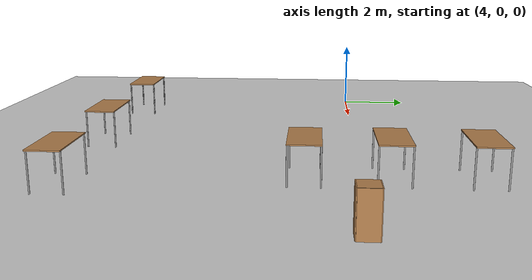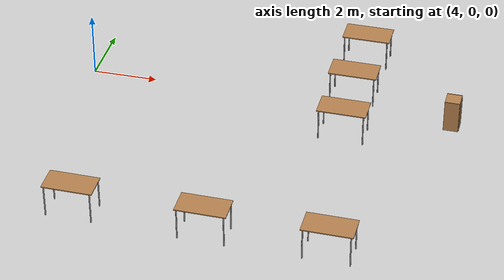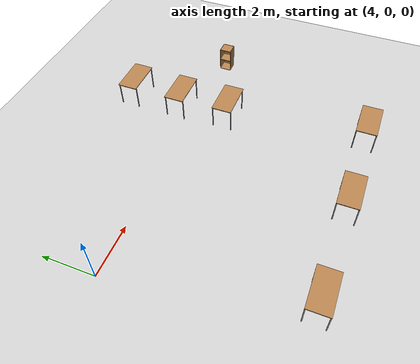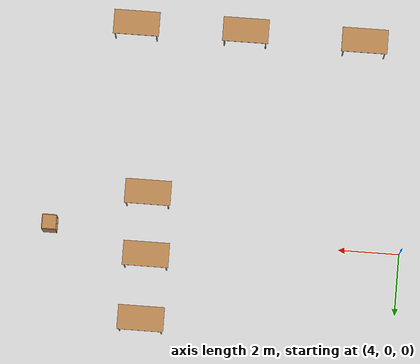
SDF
<sdf version="1.6">
 <world name="default">
  <model name="ground_plane">
   <static>1</static>
   <link name="link">
    <collision name="collision">
     <geometry><plane><normal>0 0 1</normal><size>100 100</size></plane></geometry>
     <surface>
      <contact><collide_bitmask>65535</collide_bitmask></contact>
      <friction><ode><mu>100</mu><mu2>50</mu2></ode></friction>
     </surface>
    </collision>
    <visual name="visual">
     <cast_shadows>0</cast_shadows>
     <geometry><plane><normal>0 0 1</normal><size>100 100</size></plane></geometry>
     <material>
      <script><uri>file://media/materials/scripts/gazebo.material</uri><name>Gazebo/Grey</name></script>
     </material>
    </visual>
   </link>
  </model>
  <model name="cabinet">
   <static>1</static>
   <link name="cabinet_bottom_plate">
    <inertial>
     <pose>0 0 -1 0 -0 0</pose>
     <inertia><ixx>2.05</ixx><ixy>0</ixy><ixz>0</ixz><iyy>2.05</iyy><iyz>0</iyz><izz>2.05</izz></inertia>
     <mass>25</mass>
    </inertial>
    <collision name="cabinet_bottom_plate_geom">
     <pose>0 0 0.01 0 -0 0</pose>
     <geometry><box><size>0.45 0.45 0.02</size></box></geometry>
    </collision>
    <visual name="cabinet_bottom_plate_geom_visual">
     <pose>0 0 0.01 0 -0 0</pose>
     <geometry><box><size>0.45 0.45 0.02</size></box></geometry>
     <material>
      <script><uri>file://media/materials/scripts/gazebo.material</uri><name>Gazebo/Wood</name></script>
     </material>
    </visual>
    <collision name="cabinet_bottom_plate_geom_cabinet_back_plate">
     <pose>0.235 0 0.51 0 -0 0</pose>
     <geometry><box><size>0.02 0.45 1.02</size></box></geometry>
    </collision>
    <visual name="cabinet_bottom_plate_geom_cabinet_back_plate_visual">
     <pose>0.235 0 0.51 0 -0 0</pose>
     <geometry><box><size>0.02 0.45 1.02</size></box></geometry>
     <material>
      <script><uri>file://media/materials/scripts/gazebo.material</uri><name>Gazebo/Wood</name></script>
     </material>
    </visual>
    <collision name="cabinet_bottom_plate_geom_cabinet_left_plate">
     <pose>0 0.235 0.51 0 -0 0</pose>
     <geometry><box><size>0.45 0.02 1.02</size></box></geometry>
    </collision>
    <visual name="cabinet_bottom_plate_geom_cabinet_left_plate_visual">
     <pose>0 0.235 0.51 0 -0 0</pose>
     <geometry><box><size>0.45 0.02 1.02</size></box></geometry>
     <material>
      <script><uri>file://media/materials/scripts/gazebo.material</uri><name>Gazebo/Wood</name></script>
     </material>
    </visual>
    <collision name="cabinet_bottom_plate_geom_cabinet_middle_plate">
     <pose>0 0 0.51 0 -0 0</pose>
     <geometry><box><size>0.45 0.45 0.02</size></box></geometry>
    </collision>
    <visual name="cabinet_bottom_plate_geom_cabinet_middle_plate_visual">
     <pose>0 0 0.51 0 -0 0</pose>
     <geometry><box><size>0.45 0.45 0.02</size></box></geometry>
     <material>
      <script><uri>file://media/materials/scripts/gazebo.material</uri><name>Gazebo/Wood</name></script>
     </material>
    </visual>
    <collision name="cabinet_bottom_plate_geom_cabinet_right_plate">
     <pose>0 -0.235 0.51 0 -0 0</pose>
     <geometry><box><size>0.45 0.02 1.02</size></box></geometry>
    </collision>
    <visual name="cabinet_bottom_plate_geom_cabinet_right_plate_visual">
     <pose>0 -0.235 0.51 0 -0 0</pose>
     <geometry><box><size>0.45 0.02 1.02</size></box></geometry>
     <material>
      <script><uri>file://media/materials/scripts/gazebo.material</uri><name>Gazebo/Wood</name></script>
     </material>
    </visual>
    <collision name="cabinet_bottom_plate_geom_cabinet_top_plate">
     <pose>0 0 1.01 0 -0 0</pose>
     <geometry><box><size>0.45 0.45 0.02</size></box></geometry>
    </collision>
    <visual name="cabinet_bottom_plate_geom_cabinet_top_plate_visual">
     <pose>0 0 1.01 0 -0 0</pose>
     <geometry><box><size>0.45 0.45 0.02</size></box></geometry>
     <material>
      <script><uri>file://media/materials/scripts/gazebo.material</uri><name>Gazebo/Wood</name></script>
     </material>
    </visual>
   </link>
   <pose>15.4217 -0.13321 0 0 -0 0</pose>
  </model>
  <model name="table_4">
   <static>1</static>
   <link name="link">
    <collision name="surface">
     <pose>0 0 1 0 -0 0</pose>
     <geometry><box><size>1.5 0.8 0.03</size></box></geometry>
     <surface><friction><ode><mu>0.6</mu><mu2>0.6</mu2></ode></friction></surface>
    </collision>
    <visual name="visual1">
     <pose>0 0 1 0 -0 0</pose>
     <geometry><box><size>1.5 0.8 0.03</size></box></geometry>
     <material>
      <script><uri>file://media/materials/scripts/gazebo.material</uri><name>Gazebo/Wood</name></script>
     </material>
    </visual>
    <collision name="front_left_leg">
     <pose>0.68 0.38 0.5 0 -0 0</pose>
     <geometry><cylinder><radius>0.02</radius><length>1</length></cylinder></geometry>
    </collision>
    <visual name="front_left_leg">
     <pose>0.68 0.38 0.5 0 -0 0</pose>
     <geometry><cylinder><radius>0.02</radius><length>1</length></cylinder></geometry>
     <material>
      <script><uri>file://media/materials/scripts/gazebo.material</uri><name>Gazebo/Grey</name></script>
     </material>
    </visual>
    <collision name="front_right_leg">
     <pose>0.68 -0.38 0.5 0 -0 0</pose>
     <geometry><cylinder><radius>0.02</radius><length>1</length></cylinder></geometry>
    </collision>
    <visual name="front_right_leg">
     <pose>0.68 -0.38 0.5 0 -0 0</pose>
     <geometry><cylinder><radius>0.02</radius><length>1</length></cylinder></geometry>
     <material>
      <script><uri>file://media/materials/scripts/gazebo.material</uri><name>Gazebo/Grey</name></script>
     </material>
    </visual>
    <collision name="back_right_leg">
     <pose>-0.68 -0.38 0.5 0 -0 0</pose>
     <geometry><cylinder><radius>0.02</radius><length>1</length></cylinder></geometry>
    </collision>
    <visual name="back_right_leg">
     <pose>-0.68 -0.38 0.5 0 -0 0</pose>
     <geometry><cylinder><radius>0.02</radius><length>1</length></cylinder></geometry>
     <material>
      <script><uri>file://media/materials/scripts/gazebo.material</uri><name>Gazebo/Grey</name></script>
     </material>
    </visual>
    <collision name="back_left_leg">
     <pose>-0.68 0.38 0.5 0 -0 0</pose>
     <geometry><cylinder><radius>0.02</radius><length>1</length></cylinder></geometry>
    </collision>
    <visual name="back_left_leg">
     <pose>-0.68 0.38 0.5 0 -0 0</pose>
     <geometry><cylinder><radius>0.02</radius><length>1</length></cylinder></geometry>
     <material>
      <script><uri>file://media/materials/scripts/gazebo.material</uri><name>Gazebo/Grey</name></script>
     </material>
    </visual>
   </link>
   <pose>12.221 2.77174 0 0 -0 0</pose>
  </model>
  <model name="table_5">
   <static>1</static>
   <link name="link">
    <collision name="surface">
     <pose>0 0 1 0 -0 0</pose>
     <geometry><box><size>1.5 0.8 0.03</size></box></geometry>
     <surface><friction><ode><mu>0.6</mu><mu2>0.6</mu2></ode></friction></surface>
    </collision>
    <visual name="visual1">
     <pose>0 0 1 0 -0 0</pose>
     <geometry><box><size>1.5 0.8 0.03</size></box></geometry>
     <material>
      <script><uri>file://media/materials/scripts/gazebo.material</uri><name>Gazebo/Wood</name></script>
     </material>
    </visual>
    <collision name="front_left_leg">
     <pose>0.68 0.38 0.5 0 -0 0</pose>
     <geometry><cylinder><radius>0.02</radius><length>1</length></cylinder></geometry>
    </collision>
    <visual name="front_left_leg">
     <pose>0.68 0.38 0.5 0 -0 0</pose>
     <geometry><cylinder><radius>0.02</radius><length>1</length></cylinder></geometry>
     <material>
      <script><uri>file://media/materials/scripts/gazebo.material</uri><name>Gazebo/Grey</name></script>
     </material>
    </visual>
    <collision name="front_right_leg">
     <pose>0.68 -0.38 0.5 0 -0 0</pose>
     <geometry><cylinder><radius>0.02</radius><length>1</length></cylinder></geometry>
    </collision>
    <visual name="front_right_leg">
     <pose>0.68 -0.38 0.5 0 -0 0</pose>
     <geometry><cylinder><radius>0.02</radius><length>1</length></cylinder></geometry>
     <material>
      <script><uri>file://media/materials/scripts/gazebo.material</uri><name>Gazebo/Grey</name></script>
     </material>
    </visual>
    <collision name="back_right_leg">
     <pose>-0.68 -0.38 0.5 0 -0 0</pose>
     <geometry><cylinder><radius>0.02</radius><length>1</length></cylinder></geometry>
    </collision>
    <visual name="back_right_leg">
     <pose>-0.68 -0.38 0.5 0 -0 0</pose>
     <geometry><cylinder><radius>0.02</radius><length>1</length></cylinder></geometry>
     <material>
      <script><uri>file://media/materials/scripts/gazebo.material</uri><name>Gazebo/Grey</name></script>
     </material>
    </visual>
    <collision name="back_left_leg">
     <pose>-0.68 0.38 0.5 0 -0 0</pose>
     <geometry><cylinder><radius>0.02</radius><length>1</length></cylinder></geometry>
    </collision>
    <visual name="back_left_leg">
     <pose>-0.68 0.38 0.5 0 -0 0</pose>
     <geometry><cylinder><radius>0.02</radius><length>1</length></cylinder></geometry>
     <material>
      <script><uri>file://media/materials/scripts/gazebo.material</uri><name>Gazebo/Grey</name></script>
     </material>
    </visual>
   </link>
   <pose>12.2151 0.681942 0 0 -0 0</pose>
  </model>
  <model name="table_6">
   <static>1</static>
   <link name="link">
    <collision name="surface">
     <pose>0 0 1 0 -0 0</pose>
     <geometry><box><size>1.5 0.8 0.03</size></box></geometry>
     <surface><friction><ode><mu>0.6</mu><mu2>0.6</mu2></ode></friction></surface>
    </collision>
    <visual name="visual1">
     <pose>0 0 1 0 -0 0</pose>
     <geometry><box><size>1.5 0.8 0.03</size></box></geometry>
     <material>
      <script><uri>file://media/materials/scripts/gazebo.material</uri><name>Gazebo/Wood</name></script>
     </material>
    </visual>
    <collision name="front_left_leg">
     <pose>0.68 0.38 0.5 0 -0 0</pose>
     <geometry><cylinder><radius>0.02</radius><length>1</length></cylinder></geometry>
    </collision>
    <visual name="front_left_leg">
     <pose>0.68 0.38 0.5 0 -0 0</pose>
     <geometry><cylinder><radius>0.02</radius><length>1</length></cylinder></geometry>
     <material>
      <script><uri>file://media/materials/scripts/gazebo.material</uri><name>Gazebo/Grey</name></script>
     </material>
    </visual>
    <collision name="front_right_leg">
     <pose>0.68 -0.38 0.5 0 -0 0</pose>
     <geometry><cylinder><radius>0.02</radius><length>1</length></cylinder></geometry>
    </collision>
    <visual name="front_right_leg">
     <pose>0.68 -0.38 0.5 0 -0 0</pose>
     <geometry><cylinder><radius>0.02</radius><length>1</length></cylinder></geometry>
     <material>
      <script><uri>file://media/materials/scripts/gazebo.material</uri><name>Gazebo/Grey</name></script>
     </material>
    </visual>
    <collision name="back_right_leg">
     <pose>-0.68 -0.38 0.5 0 -0 0</pose>
     <geometry><cylinder><radius>0.02</radius><length>1</length></cylinder></geometry>
    </collision>
    <visual name="back_right_leg">
     <pose>-0.68 -0.38 0.5 0 -0 0</pose>
     <geometry><cylinder><radius>0.02</radius><length>1</length></cylinder></geometry>
     <material>
      <script><uri>file://media/materials/scripts/gazebo.material</uri><name>Gazebo/Grey</name></script>
     </material>
    </visual>
    <collision name="back_left_leg">
     <pose>-0.68 0.38 0.5 0 -0 0</pose>
     <geometry><cylinder><radius>0.02</radius><length>1</length></cylinder></geometry>
    </collision>
    <visual name="back_left_leg">
     <pose>-0.68 0.38 0.5 0 -0 0</pose>
     <geometry><cylinder><radius>0.02</radius><length>1</length></cylinder></geometry>
     <material>
      <script><uri>file://media/materials/scripts/gazebo.material</uri><name>Gazebo/Grey</name></script>
     </material>
    </visual>
   </link>
   <pose>12.3048 -1.33859 0 0 -0 0</pose>
  </model>
  <model name="table_7">
   <static>1</static>
   <link name="link">
    <collision name="surface">
     <pose>0 0 1 0 -0 0</pose>
     <geometry><box><size>1.5 0.8 0.03</size></box></geometry>
     <surface><friction><ode><mu>0.6</mu><mu2>0.6</mu2></ode></friction></surface>
    </collision>
    <visual name="visual1">
     <pose>0 0 1 0 -0 0</pose>
     <geometry><box><size>1.5 0.8 0.03</size></box></geometry>
     <material>
      <script><uri>file://media/materials/scripts/gazebo.material</uri><name>Gazebo/Wood</name></script>
     </material>
    </visual>
    <collision name="front_left_leg">
     <pose>0.68 0.38 0.5 0 -0 0</pose>
     <geometry><cylinder><radius>0.02</radius><length>1</length></cylinder></geometry>
    </collision>
    <visual name="front_left_leg">
     <pose>0.68 0.38 0.5 0 -0 0</pose>
     <geometry><cylinder><radius>0.02</radius><length>1</length></cylinder></geometry>
     <material>
      <script><uri>file://media/materials/scripts/gazebo.material</uri><name>Gazebo/Grey</name></script>
     </material>
    </visual>
    <collision name="front_right_leg">
     <pose>0.68 -0.38 0.5 0 -0 0</pose>
     <geometry><cylinder><radius>0.02</radius><length>1</length></cylinder></geometry>
    </collision>
    <visual name="front_right_leg">
     <pose>0.68 -0.38 0.5 0 -0 0</pose>
     <geometry><cylinder><radius>0.02</radius><length>1</length></cylinder></geometry>
     <material>
      <script><uri>file://media/materials/scripts/gazebo.material</uri><name>Gazebo/Grey</name></script>
     </material>
    </visual>
    <collision name="back_right_leg">
     <pose>-0.68 -0.38 0.5 0 -0 0</pose>
     <geometry><cylinder><radius>0.02</radius><length>1</length></cylinder></geometry>
    </collision>
    <visual name="back_right_leg">
     <pose>-0.68 -0.38 0.5 0 -0 0</pose>
     <geometry><cylinder><radius>0.02</radius><length>1</length></cylinder></geometry>
     <material>
      <script><uri>file://media/materials/scripts/gazebo.material</uri><name>Gazebo/Grey</name></script>
     </material>
    </visual>
    <collision name="back_left_leg">
     <pose>-0.68 0.38 0.5 0 -0 0</pose>
     <geometry><cylinder><radius>0.02</radius><length>1</length></cylinder></geometry>
    </collision>
    <visual name="back_left_leg">
     <pose>-0.68 0.38 0.5 0 -0 0</pose>
     <geometry><cylinder><radius>0.02</radius><length>1</length></cylinder></geometry>
     <material>
      <script><uri>file://media/materials/scripts/gazebo.material</uri><name>Gazebo/Grey</name></script>
     </material>
    </visual>
   </link>
   <pose>13.1055 -6.87176 0 0 -0 0</pose>
  </model>
  <model name="table_8">
   <static>1</static>
   <link name="link">
    <collision name="surface">
     <pose>0 0 1 0 -0 0</pose>
     <geometry><box><size>1.5 0.8 0.03</size></box></geometry>
     <surface><friction><ode><mu>0.6</mu><mu2>0.6</mu2></ode></friction></surface>
    </collision>
    <visual name="visual1">
     <pose>0 0 1 0 -0 0</pose>
     <geometry><box><size>1.5 0.8 0.03</size></box></geometry>
     <material>
      <script><uri>file://media/materials/scripts/gazebo.material</uri><name>Gazebo/Wood</name></script>
     </material>
    </visual>
    <collision name="front_left_leg">
     <pose>0.68 0.38 0.5 0 -0 0</pose>
     <geometry><cylinder><radius>0.02</radius><length>1</length></cylinder></geometry>
    </collision>
    <visual name="front_left_leg">
     <pose>0.68 0.38 0.5 0 -0 0</pose>
     <geometry><cylinder><radius>0.02</radius><length>1</length></cylinder></geometry>
     <material>
      <script><uri>file://media/materials/scripts/gazebo.material</uri><name>Gazebo/Grey</name></script>
     </material>
    </visual>
    <collision name="front_right_leg">
     <pose>0.68 -0.38 0.5 0 -0 0</pose>
     <geometry><cylinder><radius>0.02</radius><length>1</length></cylinder></geometry>
    </collision>
    <visual name="front_right_leg">
     <pose>0.68 -0.38 0.5 0 -0 0</pose>
     <geometry><cylinder><radius>0.02</radius><length>1</length></cylinder></geometry>
     <material>
      <script><uri>file://media/materials/scripts/gazebo.material</uri><name>Gazebo/Grey</name></script>
     </material>
    </visual>
    <collision name="back_right_leg">
     <pose>-0.68 -0.38 0.5 0 -0 0</pose>
     <geometry><cylinder><radius>0.02</radius><length>1</length></cylinder></geometry>
    </collision>
    <visual name="back_right_leg">
     <pose>-0.68 -0.38 0.5 0 -0 0</pose>
     <geometry><cylinder><radius>0.02</radius><length>1</length></cylinder></geometry>
     <material>
      <script><uri>file://media/materials/scripts/gazebo.material</uri><name>Gazebo/Grey</name></script>
     </material>
    </visual>
    <collision name="back_left_leg">
     <pose>-0.68 0.38 0.5 0 -0 0</pose>
     <geometry><cylinder><radius>0.02</radius><length>1</length></cylinder></geometry>
    </collision>
    <visual name="back_left_leg">
     <pose>-0.68 0.38 0.5 0 -0 0</pose>
     <geometry><cylinder><radius>0.02</radius><length>1</length></cylinder></geometry>
     <material>
      <script><uri>file://media/materials/scripts/gazebo.material</uri><name>Gazebo/Grey</name></script>
     </material>
    </visual>
   </link>
   <pose>9.52489 -6.89113 0 0 -0 0</pose>
  </model>
  <model name="table_9">
   <static>1</static>
   <link name="link">
    <collision name="surface">
     <pose>0 0 1 0 -0 0</pose>
     <geometry><box><size>1.5 0.8 0.03</size></box></geometry>
     <surface><friction><ode><mu>0.6</mu><mu2>0.6</mu2></ode></friction></surface>
    </collision>
    <visual name="visual1">
     <pose>0 0 1 0 -0 0</pose>
     <geometry><box><size>1.5 0.8 0.03</size></box></geometry>
     <material>
      <script><uri>file://media/materials/scripts/gazebo.material</uri><name>Gazebo/Wood</name></script>
     </material>
    </visual>
    <collision name="front_left_leg">
     <pose>0.68 0.38 0.5 0 -0 0</pose>
     <geometry><cylinder><radius>0.02</radius><length>1</length></cylinder></geometry>
    </collision>
    <visual name="front_left_leg">
     <pose>0.68 0.38 0.5 0 -0 0</pose>
     <geometry><cylinder><radius>0.02</radius><length>1</length></cylinder></geometry>
     <material>
      <script><uri>file://media/materials/scripts/gazebo.material</uri><name>Gazebo/Grey</name></script>
     </material>
    </visual>
    <collision name="front_right_leg">
     <pose>0.68 -0.38 0.5 0 -0 0</pose>
     <geometry><cylinder><radius>0.02</radius><length>1</length></cylinder></geometry>
    </collision>
    <visual name="front_right_leg">
     <pose>0.68 -0.38 0.5 0 -0 0</pose>
     <geometry><cylinder><radius>0.02</radius><length>1</length></cylinder></geometry>
     <material>
      <script><uri>file://media/materials/scripts/gazebo.material</uri><name>Gazebo/Grey</name></script>
     </material>
    </visual>
    <collision name="back_right_leg">
     <pose>-0.68 -0.38 0.5 0 -0 0</pose>
     <geometry><cylinder><radius>0.02</radius><length>1</length></cylinder></geometry>
    </collision>
    <visual name="back_right_leg">
     <pose>-0.68 -0.38 0.5 0 -0 0</pose>
     <geometry><cylinder><radius>0.02</radius><length>1</length></cylinder></geometry>
     <material>
      <script><uri>file://media/materials/scripts/gazebo.material</uri><name>Gazebo/Grey</name></script>
     </material>
    </visual>
    <collision name="back_left_leg">
     <pose>-0.68 0.38 0.5 0 -0 0</pose>
     <geometry><cylinder><radius>0.02</radius><length>1</length></cylinder></geometry>
    </collision>
    <visual name="back_left_leg">
     <pose>-0.68 0.38 0.5 0 -0 0</pose>
     <geometry><cylinder><radius>0.02</radius><length>1</length></cylinder></geometry>
     <material>
      <script><uri>file://media/materials/scripts/gazebo.material</uri><name>Gazebo/Grey</name></script>
     </material>
    </visual>
   </link>
   <pose>5.61929 -6.83521 0 0 -0 0</pose>
  </model>
 </world>
</sdf>
